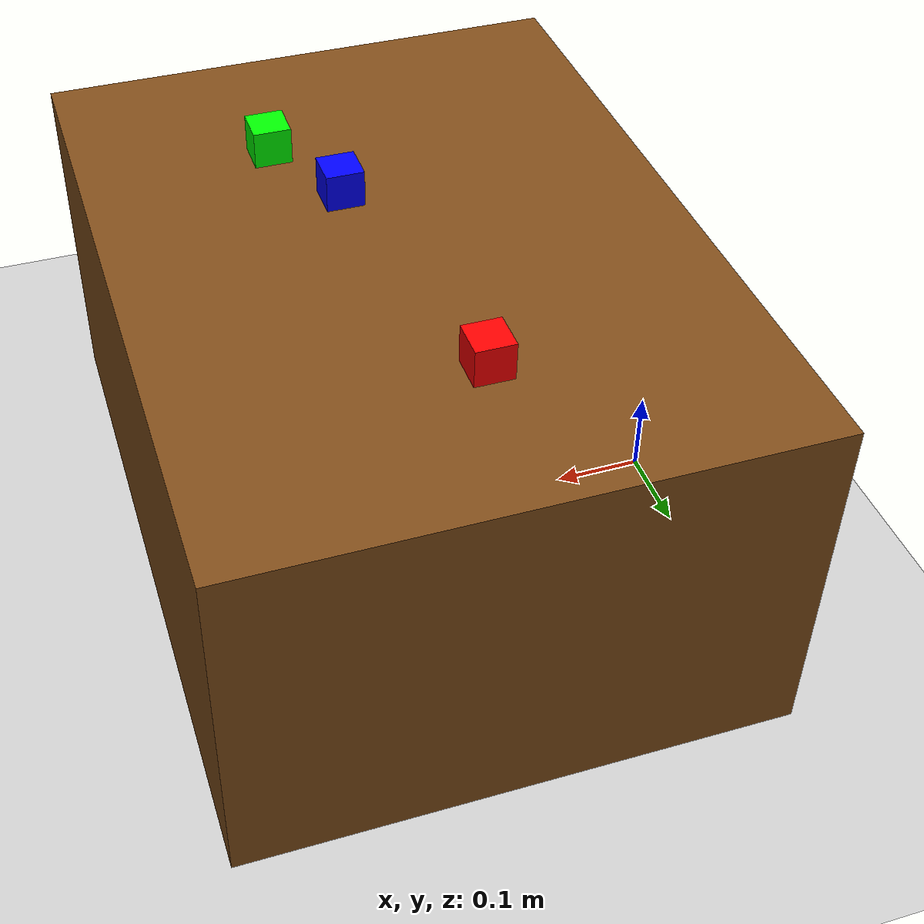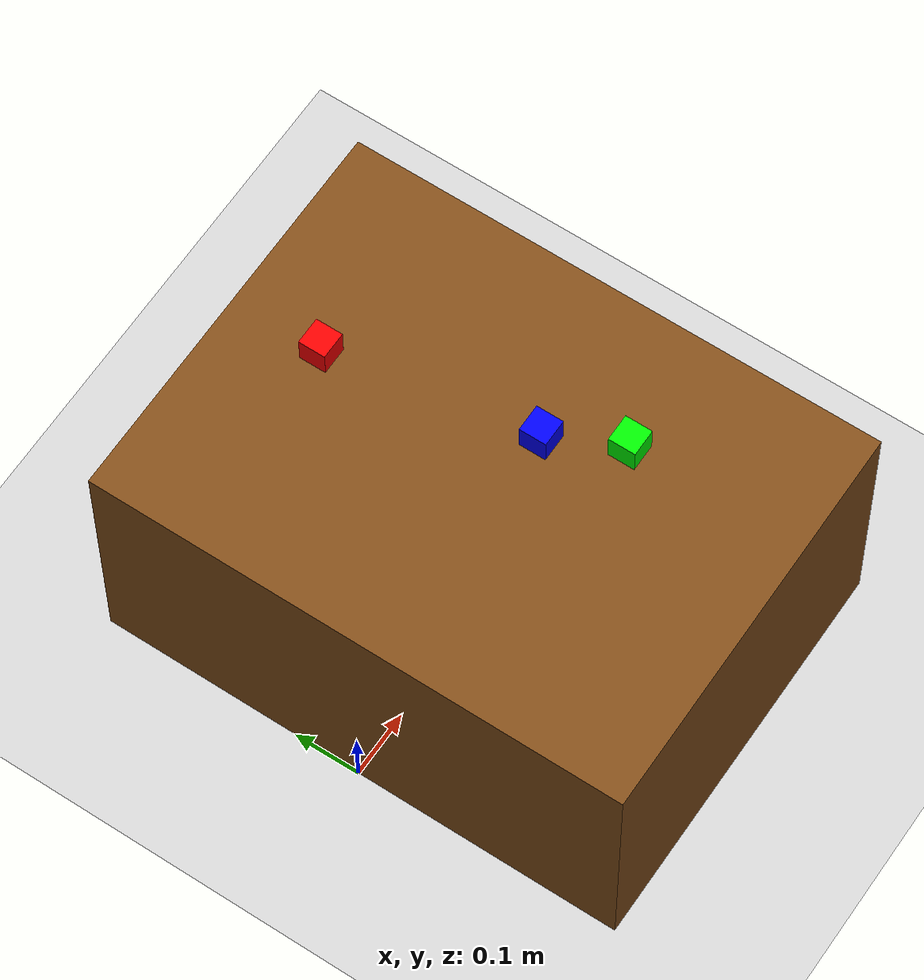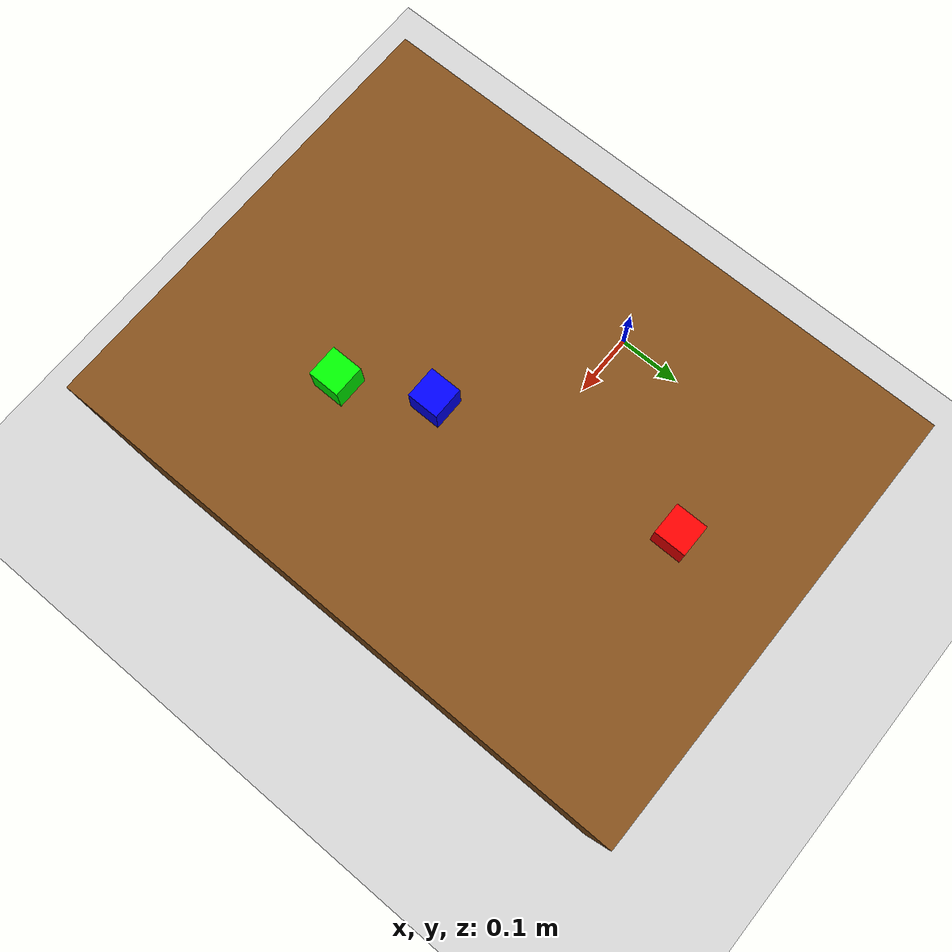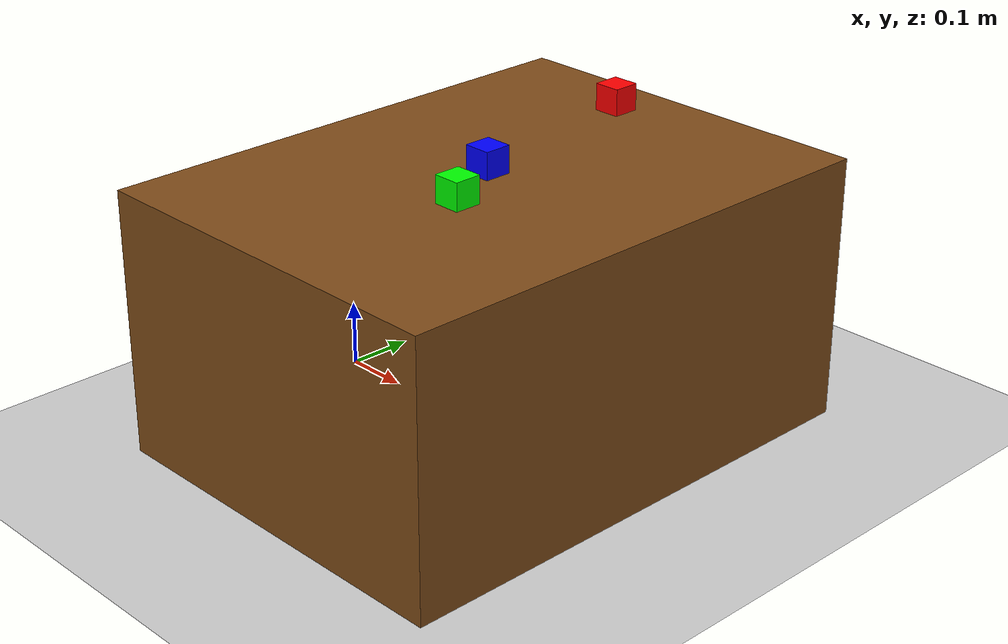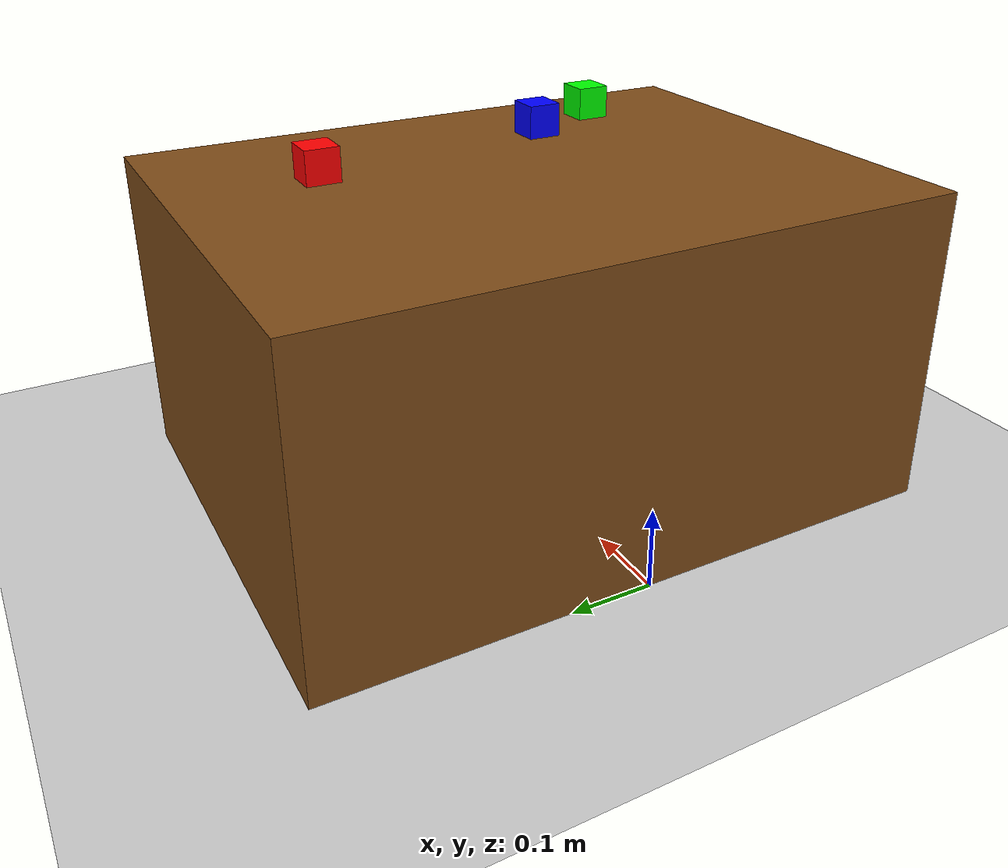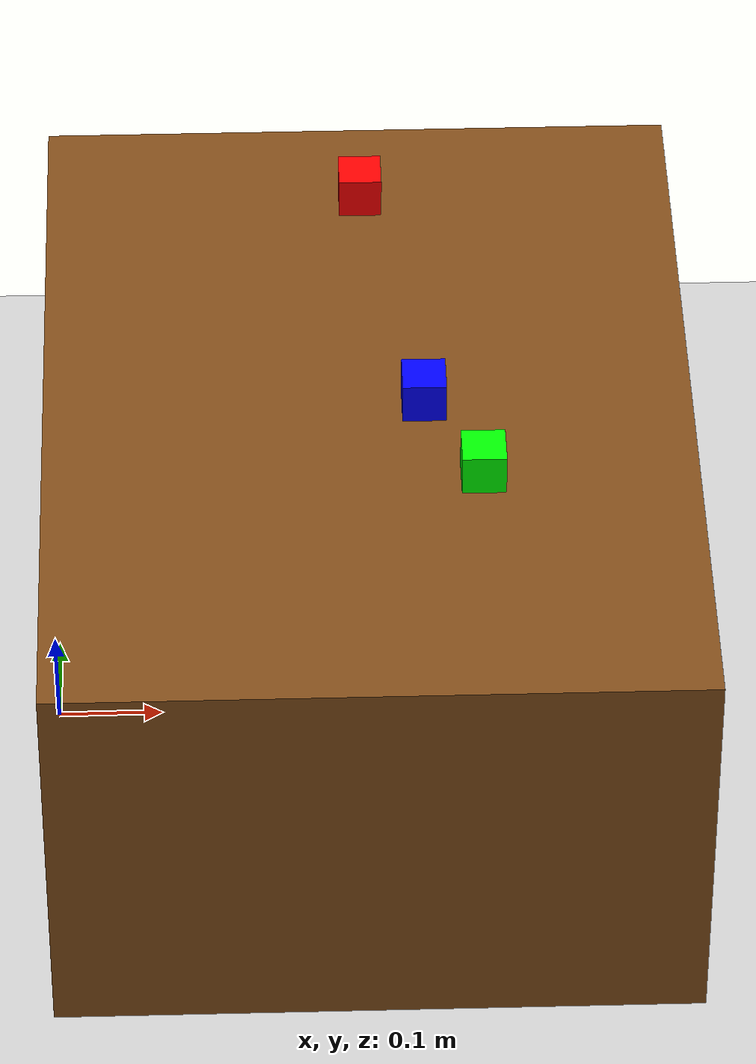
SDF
<?xml version="1.0" ?>
<sdf version="1.6">
  <world name="default">
    <include><uri>model://sun</uri></include>
    <include><uri>model://ground_plane</uri></include>

    <physics type="ode">
      <max_step_size>0.001</max_step_size>
      <real_time_factor>1.0</real_time_factor>
      <real_time_update_rate>1000</real_time_update_rate>
      <ode>
        <solver>
          <type>quick</type>
          <iters>150</iters>
          <sor>1.3</sor>
        </solver>
        <constraints>
          <cfm>0.0</cfm>
          <erp>0.2</erp>
          <contact_max_correcting_vel>100.0</contact_max_correcting_vel>
          <contact_surface_layer>0.001</contact_surface_layer>
        </constraints>
      </ode>
    </physics>

    <model name="table">
      <static>true</static>
      <pose>0.3 0 0.2 0 0 0</pose>
      <link name="link">
        <collision name="collision"><geometry><box><size>0.6 0.8 0.4</size></box></geometry></collision>
        <visual name="visual">
          <geometry><box><size>0.6 0.8 0.4</size></box></geometry>
          <material><ambient>0.5 0.3 0.1 1</ambient></material>
        </visual>
      </link>
    </model>

    <model name="red_cube">
      <pose>0.30 0.25 0.45 0 0 0</pose>
      <link name="link">
        <inertial><mass>0.05</mass></inertial>
        <collision name="collision"><geometry><box><size>0.04 0.04 0.04</size></box></geometry></collision>
        <visual name="visual">
          <geometry><box><size>0.04 0.04 0.04</size></box></geometry>
          <material><ambient>1 0 0 1</ambient></material>
        </visual>
      </link>
    </model>

    <model name="green_cube">
      <pose>0.40 -0.15 0.45 0 0 0</pose>
      <link name="link">
        <inertial><mass>0.05</mass></inertial>
        <collision name="collision"><geometry><box><size>0.04 0.04 0.04</size></box></geometry></collision>
        <visual name="visual">
          <geometry><box><size>0.04 0.04 0.04</size></box></geometry>
          <material><ambient>0 1 0 1</ambient></material>
        </visual>
      </link>
    </model>

    <model name="blue_cube">
      <pose>0.35 -0.05 0.45 0 0 0</pose>
      <link name="link">
        <inertial><mass>0.05</mass></inertial>
        <collision name="collision"><geometry><box><size>0.04 0.04 0.04</size></box></geometry></collision>
        <visual name="visual">
          <geometry><box><size>0.04 0.04 0.04</size></box></geometry>
          <material><ambient>0 0 1 1</ambient></material>
        </visual>
      </link>
    </model>

  </world>
</sdf>
